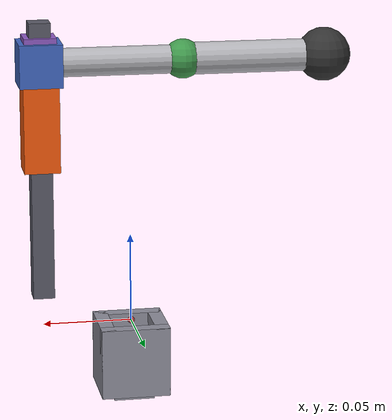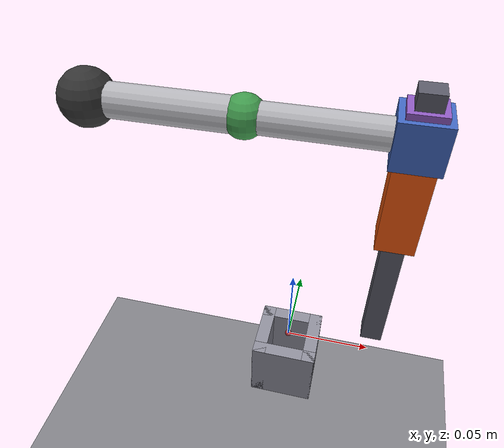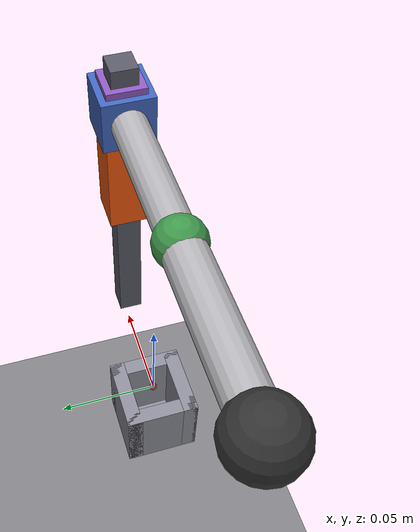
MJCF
<mujoco model="peg_in_hole_lite">
  <compiler angle="radian" inertiafromgeom="true"/>
  <option timestep="0.002" integrator="implicitfast" cone="elliptic" impratio="10" gravity="0 0 -9.81"/>
  <visual>
    <headlight ambient="0.4 0.4 0.4" diffuse="0.6 0.6 0.6" specular="0.1 0.1 0.1"/>
  </visual>

  <default>
    <default class="arm_link">
      <geom contype="0" conaffinity="0" rgba="0.6 0.6 0.65 1"/>
      <joint damping="5" armature="0.01"/>
    </default>
    <default class="wrist_joint">
      <joint damping="0.5" armature="0.002"/>
    </default>
    <default class="contact">
      <geom contype="1" conaffinity="1" condim="4" friction="0.5 0.01 0.001" solref="0.002 1" solimp="0.9 0.95 0.001"/>
    </default>
  </default>

  <worldbody>
    <light pos="0 0 1" dir="0 0 -1" diffuse="0.8 0.8 0.8"/>
    <light pos="0.3 -0.3 0.4" dir="-0.6 0.6 -0.8" diffuse="0.4 0.4 0.4"/>

    <!-- 시각적 참조용 바닥 (충돌 없음, 순수 렌더링 배경) -->
    <geom name="ground" type="plane" pos="0 0 -0.15" size="0.3 0.3 0.01" contype="0" conaffinity="0" rgba="0.5 0.5 0.52 1"/>

    <!-- Hole: 조인트 없는 고정 소켓. 4개 벽 세그먼트(picture-frame) + 바닥. -->
    <body name="hole_socket" pos="0 0 0">
      <geom class="contact" name="hole_wall_px" type="box" pos="0.0155 0 -0.02" size="0.004 0.0195 0.02" rgba="0.55 0.55 0.6 1"/>
      <geom class="contact" name="hole_wall_nx" type="box" pos="-0.0155 0 -0.02" size="0.004 0.0195 0.02" rgba="0.55 0.55 0.6 1"/>
      <geom class="contact" name="hole_wall_py" type="box" pos="0 0.0155 -0.02" size="0.0195 0.004 0.02" rgba="0.55 0.55 0.6 1"/>
      <geom class="contact" name="hole_wall_ny" type="box" pos="0 -0.0155 -0.02" size="0.0195 0.004 0.02" rgba="0.55 0.55 0.6 1"/>
      <geom class="contact" name="hole_floor" type="box" pos="0 0 -0.042" size="0.0115 0.0115 0.002" rgba="0.55 0.55 0.6 1"/>
      <site name="hole_center_site" pos="0 0 0" size="0.002" rgba="1 0 0 0.5"/>
    </body>

    <!-- SCARA형 4-DoF 팔: shoulder(회전) -> elbow(회전) -> slide_z(삽입) -> wrist(회전). -->
    <body name="arm_base" pos="-0.11 0 0.15" childclass="arm_link">
      <geom class="arm_link" size="0.015 0.015 0.005" rgba="0.2 0.2 0.2 1"/>
      <body name="upper_arm" pos="0 0 0" gravcomp="1">
        <joint name="shoulder" type="hinge" axis="0 0 1" range="-1.65 0.1"/>
        <geom class="arm_link" name="shoulder_pivot" type="sphere" size="0.013" rgba="0.75 0.25 0.25 1" mass="0.05"/>
        <geom class="arm_link" name="upper_arm_link" type="capsule" fromto="0 0 0  0.08 0 0" size="0.009" rgba="0.7 0.7 0.72 1" mass="0.15"/>
        <body name="forearm" pos="0.08 0 0" gravcomp="1">
          <joint name="elbow" type="hinge" axis="0 0 1" range="0.4 2.3"/>
          <geom class="arm_link" name="elbow_pivot" type="sphere" size="0.011" rgba="0.25 0.6 0.3 1" mass="0.04"/>
          <geom class="arm_link" name="forearm_link" type="capsule" fromto="0 0 0  0.08 0 0" size="0.008" rgba="0.7 0.7 0.72 1" mass="0.12"/>
          <!-- z 삽입축 레일 (시각 전용, 질량 무시할 만큼 작게): forearm 끝에 고정되어
               slide_z 조인트의 실제 이동 범위를 보여준다. -->
          <geom class="arm_link" name="rail_z" type="box" pos="0.08 0 -0.055" size="0.006 0.006 0.078" rgba="0.35 0.35 0.4 1" mass="0.001"/>
          <body name="z_carriage" pos="0.08 0 0" gravcomp="1">
            <joint name="slide_z" type="slide" axis="0 0 1" range="-0.13 0.02"/>
            <geom class="arm_link" type="box" size="0.012 0.012 0.012" mass="0.2" rgba="0.25 0.4 0.75 1"/>
            <body name="wrist" pos="0 0 0" gravcomp="1">
              <joint name="hinge_wrist" class="wrist_joint" type="hinge" axis="0 0 1" range="-2.15 0.6"/>
              <geom class="arm_link" type="box" size="0.009 0.009 0.015" mass="0.1" rgba="0.55 0.35 0.75 1"/>
              <!-- peg: wrist 자식이지만 자체 조인트가 없음 -> 그리퍼에 강체로 고정된 것으로 취급 -->
              <body name="peg" pos="0 0 -0.03" gravcomp="1">
                <geom class="contact" name="peg_geom" type="box" size="0.010 0.010 0.03" mass="0.05" rgba="0.95 0.35 0.05 1"/>
                <site name="peg_tip_site" pos="0 0 -0.03" size="0.003" rgba="0 1 0 1"/>
              </body>
            </body>
          </body>
        </body>
      </body>
    </body>
  </worldbody>

  <actuator>
    <position name="act_shoulder" joint="shoulder" kp="120" ctrlrange="-1.65 0.1"/>
    <position name="act_elbow" joint="elbow" kp="120" ctrlrange="0.4 2.3"/>
    <position name="act_z" joint="slide_z" kp="1000" ctrlrange="-0.13 0.02"/>
    <position name="act_wrist" joint="hinge_wrist" kp="30" ctrlrange="-2.15 0.6"/>
  </actuator>

  <sensor>
    <force name="peg_force" site="peg_tip_site"/>
    <torque name="peg_torque" site="peg_tip_site"/>
  </sensor>
</mujoco>
